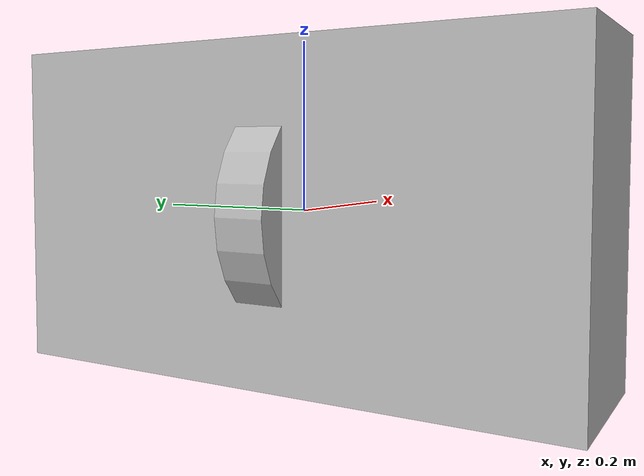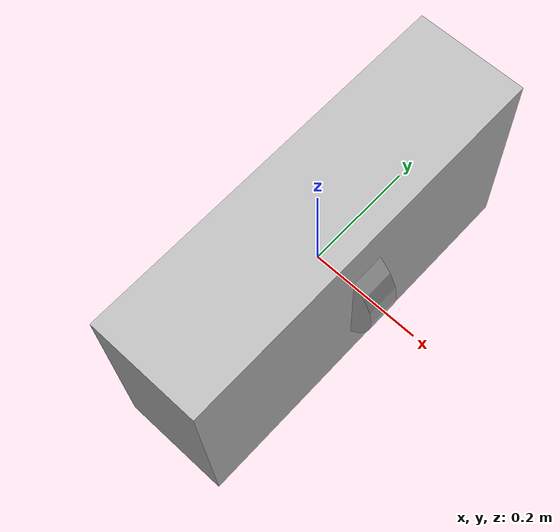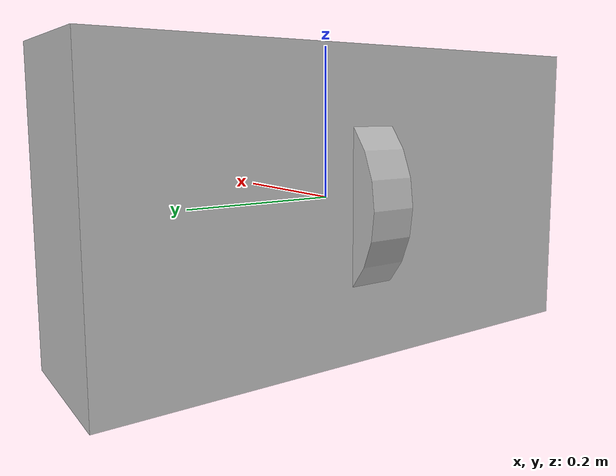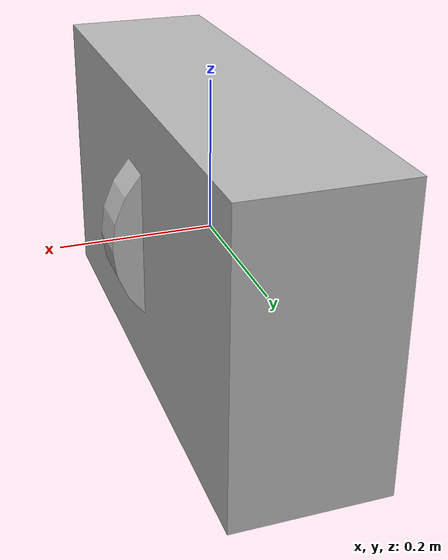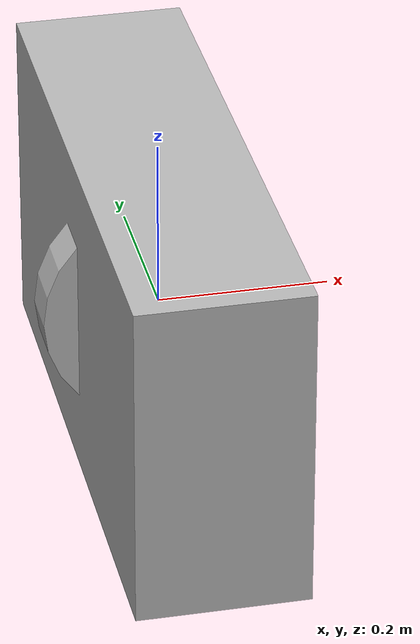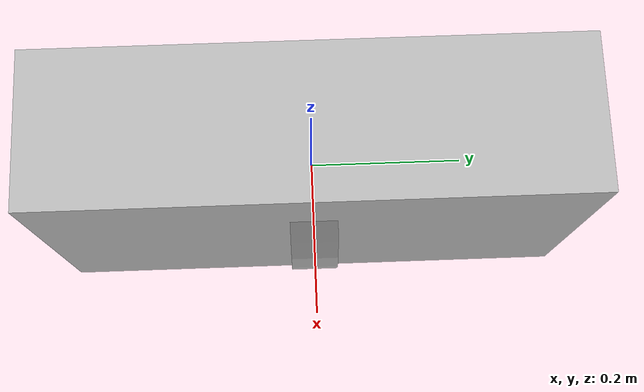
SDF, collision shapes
<?xml version="1.0" ?>
<sdf version="1.5">
  <model name="basic_mobile_bot">

  <!-- ****************** ROBOT BASE FOOTPRINT ***************************  -->
  <pose>0.0 0.0 0.0 0.0 0.0 0.0</pose>
  <link name="base_footprint"/>

  <!-- ********************** ROBOT BASE *********************************  -->
  <link name="base_link">

    <collision name="base_collision">
      <pose>0 0 0 1.570796 0 1.570796</pose>
      <geometry>
        <box>
          <size>0.70 0.39 0.20</size>
        </box>
      </geometry>
    </collision>

    <visual name="base_visual">
      <pose>0 0 -0.05 1.5707963267949 0 3.141592654</pose>
      <geometry>
        <mesh>
          <uri>model://basic_mobile_bot_description/meshes/robot_base.stl</uri>
          <scale>1.0 1.0 1.0</scale>
        </mesh>
      </geometry>
      <material>
        <script>Gazebo/Red</script>
      </material>
    </visual>
  </link>

  <!-- *********************** IMU SENSOR SETUP **************************  -->
  <link name="imu_link">
    <gravity>true</gravity>
    <sensor name="bmb_imu" type="imu">
      <always_on>true</always_on>
      <update_rate>100</update_rate>
      <visualize>true</visualize>
      <imu>
        <orientation>
          <x>
            <noise type="gaussian">
              <mean>0.0</mean>
              <stddev>2e-3</stddev>
            </noise>
          </x>
          <y>
            <noise type="gaussian">
              <mean>0.0</mean>
              <stddev>2e-3</stddev>
            </noise>
          </y>
          <z>
            <noise type="gaussian">
              <mean>0.0</mean>
              <stddev>2e-3</stddev>
            </noise>
          </z>
        </orientation>
        <angular_velocity>
          <x>
            <noise type="gaussian">
              <mean>0.0</mean>
              <stddev>2e-4</stddev>
            </noise>
          </x>
          <y>
            <noise type="gaussian">
              <mean>0.0</mean>
              <stddev>2e-4</stddev>
            </noise>
          </y>
          <z>
            <noise type="gaussian">
              <mean>0.0</mean>
              <stddev>2e-4</stddev>
            </noise>
          </z>
        </angular_velocity>
        <linear_acceleration>
          <x>
            <noise type="gaussian">
              <mean>0.0</mean>
              <stddev>1.7e-2</stddev>
            </noise>
          </x>
          <y>
            <noise type="gaussian">
              <mean>0.0</mean>
              <stddev>1.7e-2</stddev>
            </noise>
          </y>
          <z>
            <noise type="gaussian">
              <mean>0.0</mean>
              <stddev>1.7e-2</stddev>
            </noise>
          </z>
        </linear_acceleration>
      </imu>
      <plugin name="basic_mobile_bot_imu" filename="libgazebo_ros_imu_sensor.so">
        <initial_orientation_as_reference>false</initial_orientation_as_reference>
        <frame_name>imu_link</frame_name>
        <ros>
          <namespace>/imu</namespace>
          <remapping>~/out:=data</remapping>
        </ros>
      </plugin>
    </sensor>
  </link>

  <!-- *********************** GPS SETUP *********************************  -->
  <link name="gps_link">
    <sensor name="bmb_gps" type="gps">
      <always_on>true</always_on>
      <update_rate>10.0</update_rate>
      <gps>
        <position_sensing>
          <horizontal>
            <noise type="gaussian">
              <mean>0.0</mean>
              <stddev>1e-2</stddev>
            </noise>
          </horizontal>
          <vertical>
            <noise type="gaussian">
              <mean>0.0</mean>
              <stddev>1</stddev>
            </noise>
          </vertical>
        </position_sensing>
      </gps>
      <plugin name="basic_mobile_bot_gps" filename="libgazebo_ros_gps_sensor.so">
        <ros>
          <remapping>~/out:=gps/fix</remapping>
        </ros>
      </plugin>
    </sensor>
  </link>

  <!-- *********************** DRIVE WHEELS ******************************  -->
  <link name="drivewhl_l_link">

    <collision name="drivewhl_l_collision">
      <pose>0 0 0 1.5707963267949 0 0</pose>
      <geometry>
        <cylinder>
          <radius>0.14</radius>
          <length>0.06</length>
        </cylinder>
      </geometry>
      <surface>
        <friction>
          <ode>
            <mu>100000.0</mu>
            <mu2>100000.0</mu2>
            <fdir1>0 0 0</fdir1>
            <slip1>0.0</slip1>
            <slip2>0.0</slip2>
          </ode>
        </friction>
        <contact>
          <ode>
            <soft_cfm>0</soft_cfm>
            <soft_erp>0.2</soft_erp>
            <kp>1e+5</kp>
            <kd>1</kd>
            <max_vel>0.01</max_vel>
            <min_depth>0.001</min_depth>
          </ode>
        </contact>
      </surface>
    </collision>

    <visual name="drivewhl_l_visual">
      <pose>0 0 0 1.5707963267949 0 0</pose>
      <geometry>
        <cylinder>
          <radius>0.14</radius>
          <length>0.06</length>
        </cylinder>
      </geometry>
      <material>
        <script>Gazebo/White</script>
      </material>
    </visual>
  </link>

  <link name="drivewhl_r_link">
    <collision name="drivewhl_r_collision">
      <pose>0 0 0 1.5707963267949 0 0</pose>
      <geometry>
        <cylinder>
          <radius>0.14</radius>
          <length>0.06</length>
        </cylinder>
      </geometry>
      <surface>
        <friction>
          <ode>
            <mu>100000.0</mu>
            <mu2>100000.0</mu2>
            <fdir1>0 0 0</fdir1>
            <slip1>0.0</slip1>
            <slip2>0.0</slip2>
          </ode>
        </friction>
        <contact>
          <ode>
            <soft_cfm>0</soft_cfm>
            <soft_erp>0.2</soft_erp>
            <kp>1e+5</kp>
            <kd>1</kd>
            <max_vel>0.01</max_vel>
            <min_depth>0.001</min_depth>
          </ode>
        </contact>
      </surface>
    </collision>

    <visual name="drivewhl_r_visual">
      <pose>0 0 0 1.5707963267949 0 0</pose>
      <geometry>
        <cylinder>
          <radius>0.14</radius>
          <length>0.06</length>
        </cylinder>
      </geometry>
      <material>
        <script>Gazebo/White</script>
      </material>
    </visual>
  </link>

  <!-- *********************** CASTER WHEEL ******************************  -->
  <link name='front_caster'>
    <pose>0 0 0 0 0 0</pose>
    <collision name='collision'>
      <geometry>
        <sphere>
          <radius>0.09</radius>
        </sphere>
      </geometry>
      <surface>
        <contact>
          <ode>
            <soft_cfm>0</soft_cfm>
            <soft_erp>0.2</soft_erp>
            <kp>1e+5</kp>
            <kd>1</kd>
            <max_vel>0.01</max_vel>
            <min_depth>0.001</min_depth>
          </ode>
        </contact>
      </surface>
    </collision>
    <visual name="front_caster_visual">
      <pose>0 0 0 0 0 0</pose>
      <geometry>
        <sphere>
          <radius>0.09</radius>
        </sphere>
      </geometry>
      <material>
        <script>Gazebo/White</script>
      </material>
    </visual>
  </link>

  <!-- ************************ JOINTS ***********************************  -->
  <joint name="base_joint" type="fixed">
    <parent>base_footprint</parent>
    <child>base_link</child>
    <pose>0.0 0.0 0.19 0 0 0</pose>
  </joint>

  <joint name="drivewhl_l_joint" type="continuous">
    <parent>base_link</parent>
    <child>drivewhl_l_link</child>
    <pose>-0.221 0.23 -0.05 0 0 0</pose>
    <axis>
      <xyz>0 1 0</xyz>
    </axis>
  </joint>

  <joint name="drivewhl_r_joint" type="continuous">
    <parent>base_link</parent>
    <child>drivewhl_r_link</child>
    <pose>-0.221 -0.23 -0.05 0 0 0</pose>
    <axis>
      <xyz>0 1 0</xyz>
    </axis>
  </joint>

  <joint name='caster_joint' type='fixed'>
    <parent>base_link</parent>
    <child>front_caster</child>
    <pose>0.217 0 -0.1 0 0 0</pose>
  </joint>

  <joint name="imu_joint" type="fixed">
    <parent>base_link</parent>
    <child>imu_link</child>
    <pose>-0.10 0 0.05 0 0 0</pose>
  </joint>

  <joint name="gps_joint" type="fixed">
    <parent>base_link</parent>
    <child>gps_link</child>
    <pose>0.10 0 0.05 0 0 0</pose>
  </joint>

  <!-- *********************** WHEEL ODOMETRY ****************************    -->
  <plugin name="basic_mobile_bot_diff_drive" filename="libgazebo_ros_diff_drive.so">

    <update_rate>30</update_rate>

    <!-- wheels -->
    <left_joint>drivewhl_l_joint</left_joint>
    <right_joint>drivewhl_r_joint</right_joint>

    <!-- kinematics -->
    <wheel_separation>0.52</wheel_separation>
    <wheel_diameter>0.28</wheel_diameter>

    <!-- limits -->
    <max_wheel_torque>20</max_wheel_torque>
    <max_wheel_acceleration>1.0</max_wheel_acceleration>

    <command_topic>cmd_vel</command_topic>

    <!-- output -->
    <publish_odom>true</publish_odom>
    <publish_odom_tf>false</publish_odom_tf>
    <publish_wheel_tf>false</publish_wheel_tf>

    <odometry_topic>odom</odometry_topic>
    <odometry_frame>odom</odometry_frame>
    <robot_base_frame>base_footprint</robot_base_frame>

    <!-- Odometry source, 0 for ENCODER, 1 for WORLD, defaults to WORLD -->
    <odometry_source>0</odometry_source>

    <ros>
      <remapping>odom:=wheel/odometry</remapping>
    </ros>

  </plugin>

  <plugin name="basic_mobile_bot_joint_state" filename="libgazebo_ros_joint_state_publisher.so">
    <ros>
      <remapping>~/out:=joint_states</remapping>
    </ros>
    <update_rate>30</update_rate>
    <joint_name>drivewhl_l_joint</joint_name>
    <joint_name>drivewhl_r_joint</joint_name>
  </plugin>

  </model>
</sdf>
